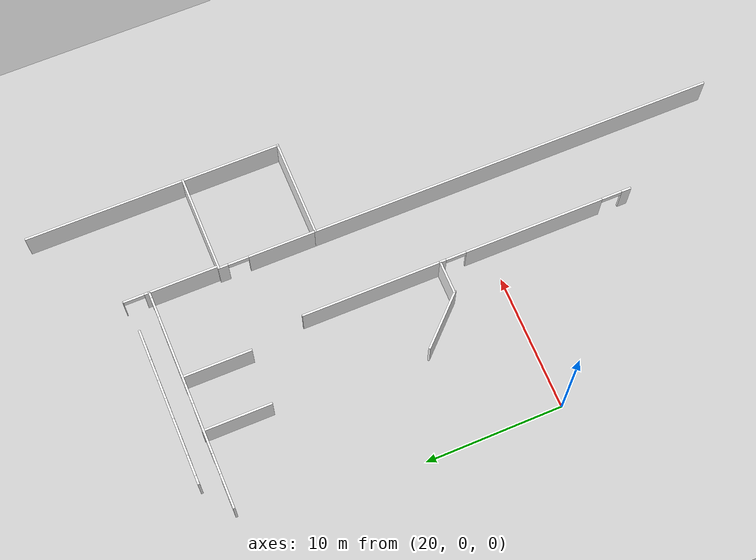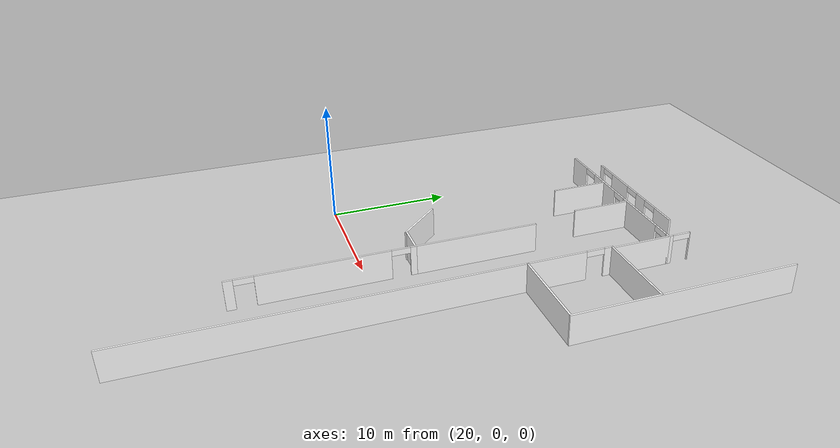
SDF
<sdf version="1.6">
 <world name="default">
  <model name="ground_plane">
   <static>1</static>
   <link name="link">
    <collision name="collision">
     <geometry><plane><normal>0 0 1</normal><size>100 100</size></plane></geometry>
     <surface><friction><ode><mu>100</mu><mu2>50</mu2></ode></friction></surface>
    </collision>
    <visual name="visual">
     <cast_shadows>0</cast_shadows>
     <geometry><plane><normal>0 0 1</normal><size>100 100</size></plane></geometry>
     <material>
      <script>
       <uri>model://office_env/materials/scripts</uri>
       <uri>model://office_env/materials/textures</uri>
       <name>wall</name>
      </script>
     </material>
    </visual>
   </link>
  </model>
  <model name="aule_N">
   <pose>0.1887 -1.4289 0 0 -0 0</pose>
   <link name="Wall_102">
    <collision name="Wall_102_Collision">
     <geometry><box><size>10.25 0.15 2.5</size></box></geometry>
     <pose>0 0 1.25 0 -0 0</pose>
    </collision>
    <visual name="Wall_102_Visual">
     <pose>0 0 1.25 0 -0 0</pose>
     <geometry><box><size>10.25 0.15 2.5</size></box></geometry>
     <material>
      <script>
       <uri>model://office_env/materials/scripts</uri>
       <uri>model://office_env/materials/textures</uri>
       <name>wall</name>
      </script>
      <ambient>1 1 1 1</ambient>
     </material>
    </visual>
    <pose>31.8169 10.3497 0 0 -0 1.5708</pose>
   </link>
   <link name="Wall_151">
    <pose>37.2203 15.8955 0 0 -0 1.5708</pose>
    <visual name="Wall_151_Visual_0">
     <pose>-1.12447 0 1.25 0 -0 0</pose>
     <geometry><box><size>5.00105 0.15 2.5</size></box></geometry>
     <material>
      <script>
       <uri>model://office_env/materials/scripts</uri>
       <uri>model://office_env/materials/textures</uri>
       <name>wall</name>
      </script>
      <ambient>1 1 1 1</ambient>
     </material>
    </visual>
    <collision name="Wall_151_Collision_0">
     <geometry><box><size>5.00105 0.15 2.5</size></box></geometry>
     <pose>-1.12447 0 1.25 0 -0 0</pose>
    </collision>
    <visual name="Wall_151_Visual_1">
     <pose>3.25053 0 1.25 0 -0 0</pose>
     <geometry><box><size>0.748949 0.15 2.5</size></box></geometry>
     <material>
      <script>
       <uri>model://office_env/materials/scripts</uri>
       <uri>model://office_env/materials/textures</uri>
       <name>wall</name>
      </script>
      <ambient>1 1 1 1</ambient>
     </material>
    </visual>
    <collision name="Wall_151_Collision_1">
     <geometry><box><size>0.748949 0.15 2.5</size></box></geometry>
     <pose>3.25053 0 1.25 0 -0 0</pose>
    </collision>
    <visual name="Wall_151_Visual_2">
     <pose>2.12605 0 2.25 0 -0 0</pose>
     <geometry><box><size>1.5 0.15 0.5</size></box></geometry>
     <material>
      <script>
       <uri>model://office_env/materials/scripts</uri>
       <uri>model://office_env/materials/textures</uri>
       <name>wall</name>
      </script>
      <ambient>1 1 1 1</ambient>
     </material>
    </visual>
    <collision name="Wall_151_Collision_2">
     <geometry><box><size>1.5 0.15 0.5</size></box></geometry>
     <pose>2.12605 0 2.25 0 -0 0</pose>
    </collision>
   </link>
   <link name="Wall_152">
    <collision name="Wall_152_Collision">
     <geometry><box><size>7.25 0.15 2.5</size></box></geometry>
     <pose>0 0 1.25 0 -0 0</pose>
    </collision>
    <visual name="Wall_152_Visual">
     <pose>0 0 1.25 0 -0 0</pose>
     <geometry><box><size>7.25 0.15 2.5</size></box></geometry>
     <material>
      <script>
       <uri>model://office_env/materials/scripts</uri>
       <uri>model://office_env/materials/textures</uri>
       <name>wall</name>
      </script>
      <ambient>1 1 1 1</ambient>
     </material>
    </visual>
    <pose>40.7703 19.4455 0 0 -0 0</pose>
   </link>
   <link name="Wall_154">
    <pose>29.3256 24.4418 0 0 -0 0</pose>
    <visual name="Wall_154_Visual_0">
     <pose>-6.88088 0 1.25 0 -0 0</pose>
     <geometry><box><size>2.48824 0.15 2.5</size></box></geometry>
     <material>
      <script>
       <uri>model://office_env/materials/scripts</uri>
       <uri>model://office_env/materials/textures</uri>
       <name>wall</name>
      </script>
      <ambient>1 1 1 1</ambient>
     </material>
    </visual>
    <collision name="Wall_154_Collision_0">
     <geometry><box><size>2.48824 0.15 2.5</size></box></geometry>
     <pose>-6.88088 0 1.25 0 -0 0</pose>
    </collision>
    <visual name="Wall_154_Visual_1">
     <pose>-2.30449 0 1.25 0 -0 0</pose>
     <geometry><box><size>3.66454 0.15 2.5</size></box></geometry>
     <material>
      <script>
       <uri>model://office_env/materials/scripts</uri>
       <uri>model://office_env/materials/textures</uri>
       <name>wall</name>
      </script>
      <ambient>1 1 1 1</ambient>
     </material>
    </visual>
    <collision name="Wall_154_Collision_1">
     <geometry><box><size>3.66454 0.15 2.5</size></box></geometry>
     <pose>-2.30449 0 1.25 0 -0 0</pose>
    </collision>
    <visual name="Wall_154_Visual_2">
     <pose>3.58098 0 1.25 0 -0 0</pose>
     <geometry><box><size>5.10639 0.15 2.5</size></box></geometry>
     <material>
      <script>
       <uri>model://office_env/materials/scripts</uri>
       <uri>model://office_env/materials/textures</uri>
       <name>wall</name>
      </script>
      <ambient>1 1 1 1</ambient>
     </material>
    </visual>
    <collision name="Wall_154_Collision_2">
     <geometry><box><size>5.10639 0.15 2.5</size></box></geometry>
     <pose>3.58098 0 1.25 0 -0 0</pose>
    </collision>
    <visual name="Wall_154_Visual_3">
     <pose>7.87959 0 1.25 0 -0 0</pose>
     <geometry><box><size>0.490824 0.15 2.5</size></box></geometry>
     <material>
      <script>
       <uri>model://office_env/materials/scripts</uri>
       <uri>model://office_env/materials/textures</uri>
       <name>wall</name>
      </script>
      <ambient>1 1 1 1</ambient>
     </material>
    </visual>
    <collision name="Wall_154_Collision_3">
     <geometry><box><size>0.490824 0.15 2.5</size></box></geometry>
     <pose>7.87959 0 1.25 0 -0 0</pose>
    </collision>
    <visual name="Wall_154_Visual_4">
     <pose>-4.88676 0 2.25 0 -0 0</pose>
     <geometry><box><size>1.5 0.15 0.5</size></box></geometry>
     <material>
      <script>
       <uri>model://office_env/materials/scripts</uri>
       <uri>model://office_env/materials/textures</uri>
       <name>wall</name>
      </script>
      <ambient>1 1 1 1</ambient>
     </material>
    </visual>
    <collision name="Wall_154_Collision_4">
     <geometry><box><size>1.5 0.15 0.5</size></box></geometry>
     <pose>-4.88676 0 2.25 0 -0 0</pose>
    </collision>
    <visual name="Wall_154_Visual_5">
     <pose>0.277782 0 2.25 0 -0 0</pose>
     <geometry><box><size>1.5 0.15 0.5</size></box></geometry>
     <material>
      <script>
       <uri>model://office_env/materials/scripts</uri>
       <uri>model://office_env/materials/textures</uri>
       <name>wall</name>
      </script>
      <ambient>1 1 1 1</ambient>
     </material>
    </visual>
    <collision name="Wall_154_Collision_5">
     <geometry><box><size>1.5 0.15 0.5</size></box></geometry>
     <pose>0.277782 0 2.25 0 -0 0</pose>
    </collision>
    <visual name="Wall_154_Visual_6">
     <pose>6.88418 0 2.25 0 -0 0</pose>
     <geometry><box><size>1.5 0.15 0.5</size></box></geometry>
     <material>
      <script>
       <uri>model://office_env/materials/scripts</uri>
       <uri>model://office_env/materials/textures</uri>
       <name>wall</name>
      </script>
      <ambient>1 1 1 1</ambient>
     </material>
    </visual>
    <collision name="Wall_154_Collision_6">
     <geometry><box><size>1.5 0.15 0.5</size></box></geometry>
     <pose>6.88418 0 2.25 0 -0 0</pose>
    </collision>
   </link>
   <link name="Wall_155">
    <collision name="Wall_155_Collision">
     <geometry><box><size>5 0.15 2.5</size></box></geometry>
     <pose>0 0 1.25 0 -0 0</pose>
    </collision>
    <visual name="Wall_155_Visual">
     <pose>0 0 1.25 0 -0 0</pose>
     <geometry><box><size>5 0.15 2.5</size></box></geometry>
     <material>
      <script>
       <uri>model://office_env/materials/scripts</uri>
       <uri>model://office_env/materials/textures</uri>
       <name>wall</name>
      </script>
      <ambient>1 1 1 1</ambient>
     </material>
    </visual>
    <pose>37.3756 22.0168 0 0 0 -1.5708</pose>
   </link>
   <link name="Wall_157">
    <collision name="Wall_157_Collision">
     <geometry><box><size>5 0.15 2.5</size></box></geometry>
     <pose>0 0 1.25 0 -0 0</pose>
    </collision>
    <visual name="Wall_157_Visual">
     <pose>0 0 1.25 0 -0 0</pose>
     <geometry><box><size>5 0.15 2.5</size></box></geometry>
     <material>
      <script>
       <uri>model://office_env/materials/scripts</uri>
       <uri>model://office_env/materials/textures</uri>
       <name>wall</name>
      </script>
      <ambient>1 1 1 1</ambient>
     </material>
    </visual>
    <pose>26.8585 22.0634 0 0 0 -1.5708</pose>
   </link>
   <link name="Wall_159">
    <collision name="Wall_159_Collision">
     <geometry><box><size>5 0.15 2.5</size></box></geometry>
     <pose>0 0 1.25 0 -0 0</pose>
    </collision>
    <visual name="Wall_159_Visual">
     <pose>0 0 1.25 0 -0 0</pose>
     <geometry><box><size>5 0.15 2.5</size></box></geometry>
     <material>
      <script>
       <uri>model://office_env/materials/scripts</uri>
       <uri>model://office_env/materials/textures</uri>
       <name>wall</name>
      </script>
      <ambient>1 1 1 1</ambient>
     </material>
    </visual>
    <pose>30.8596 21.9703 0 0 0 -1.5708</pose>
   </link>
   <link name="Wall_161">
    <pose>37.3756 25.3668 0 0 -0 1.5708</pose>
    <visual name="Wall_161_Visual_0">
     <pose>-0.779213 0 1.25 0 -0 0</pose>
     <geometry><box><size>0.441574 0.15 2.5</size></box></geometry>
     <material>
      <script>
       <uri>model://office_env/materials/scripts</uri>
       <uri>model://office_env/materials/textures</uri>
       <name>wall</name>
      </script>
      <ambient>1 1 1 1</ambient>
     </material>
    </visual>
    <collision name="Wall_161_Collision_0">
     <geometry><box><size>0.441574 0.15 2.5</size></box></geometry>
     <pose>-0.779213 0 1.25 0 -0 0</pose>
    </collision>
    <visual name="Wall_161_Visual_1">
     <pose>0.970787 0 1.25 0 -0 0</pose>
     <geometry><box><size>0.058426 0.15 2.5</size></box></geometry>
     <material>
      <script>
       <uri>model://office_env/materials/scripts</uri>
       <uri>model://office_env/materials/textures</uri>
       <name>wall</name>
      </script>
      <ambient>1 1 1 1</ambient>
     </material>
    </visual>
    <collision name="Wall_161_Collision_1">
     <geometry><box><size>0.058426 0.15 2.5</size></box></geometry>
     <pose>0.970787 0 1.25 0 -0 0</pose>
    </collision>
    <visual name="Wall_161_Visual_2">
     <pose>0.191574 0 2.25 0 -0 0</pose>
     <geometry><box><size>1.5 0.15 0.5</size></box></geometry>
     <material>
      <script>
       <uri>model://office_env/materials/scripts</uri>
       <uri>model://office_env/materials/textures</uri>
       <name>wall</name>
      </script>
      <ambient>1 1 1 1</ambient>
     </material>
    </visual>
    <collision name="Wall_161_Collision_2">
     <geometry><box><size>1.5 0.15 0.5</size></box></geometry>
     <pose>0.191574 0 2.25 0 -0 0</pose>
    </collision>
   </link>
   <link name="Wall_173">
    <pose>29.3234 25.9953 0 0 -0 0</pose>
    <visual name="Wall_173_Visual_0">
     <pose>-5.43624 0 1.25 0 -0 0</pose>
     <geometry><box><size>0.627523 0.15 2.5</size></box></geometry>
     <material>
      <script>
       <uri>model://office_env/materials/scripts</uri>
       <uri>model://office_env/materials/textures</uri>
       <name>wall</name>
      </script>
      <ambient>1 1 1 1</ambient>
     </material>
    </visual>
    <collision name="Wall_173_Collision_0">
     <geometry><box><size>0.627523 0.15 2.5</size></box></geometry>
     <pose>-5.43624 0 1.25 0 -0 0</pose>
    </collision>
    <visual name="Wall_173_Visual_1">
     <pose>-2.27883 0 1.25 0 -0 0</pose>
     <geometry><box><size>2.6873 0.15 2.5</size></box></geometry>
     <material>
      <script>
       <uri>model://office_env/materials/scripts</uri>
       <uri>model://office_env/materials/textures</uri>
       <name>wall</name>
      </script>
      <ambient>1 1 1 1</ambient>
     </material>
    </visual>
    <collision name="Wall_173_Collision_1">
     <geometry><box><size>2.6873 0.15 2.5</size></box></geometry>
     <pose>-2.27883 0 1.25 0 -0 0</pose>
    </collision>
    <visual name="Wall_173_Visual_2">
     <pose>1.25706 0 1.25 0 -0 0</pose>
     <geometry><box><size>1.38448 0.15 2.5</size></box></geometry>
     <material>
      <script>
       <uri>model://office_env/materials/scripts</uri>
       <uri>model://office_env/materials/textures</uri>
       <name>wall</name>
      </script>
      <ambient>1 1 1 1</ambient>
     </material>
    </visual>
    <collision name="Wall_173_Collision_2">
     <geometry><box><size>1.38448 0.15 2.5</size></box></geometry>
     <pose>1.25706 0 1.25 0 -0 0</pose>
    </collision>
    <visual name="Wall_173_Visual_3">
     <pose>4.59965 0 1.25 0 -0 0</pose>
     <geometry><box><size>2.3007 0.15 2.5</size></box></geometry>
     <material>
      <script>
       <uri>model://office_env/materials/scripts</uri>
       <uri>model://office_env/materials/textures</uri>
       <name>wall</name>
      </script>
      <ambient>1 1 1 1</ambient>
     </material>
    </visual>
    <collision name="Wall_173_Collision_3">
     <geometry><box><size>2.3007 0.15 2.5</size></box></geometry>
     <pose>4.59965 0 1.25 0 -0 0</pose>
    </collision>
    <visual name="Wall_173_Visual_4">
     <pose>-4.37248 0 2.25 0 -0 0</pose>
     <geometry><box><size>1.5 0.15 0.5</size></box></geometry>
     <material>
      <script>
       <uri>model://office_env/materials/scripts</uri>
       <uri>model://office_env/materials/textures</uri>
       <name>wall</name>
      </script>
      <ambient>1 1 1 1</ambient>
     </material>
    </visual>
    <collision name="Wall_173_Collision_4">
     <geometry><box><size>1.5 0.15 0.5</size></box></geometry>
     <pose>-4.37248 0 2.25 0 -0 0</pose>
    </collision>
    <visual name="Wall_173_Visual_5">
     <pose>-0.185179 0 2.25 0 -0 0</pose>
     <geometry><box><size>1.5 0.15 0.5</size></box></geometry>
     <material>
      <script>
       <uri>model://office_env/materials/scripts</uri>
       <uri>model://office_env/materials/textures</uri>
       <name>wall</name>
      </script>
      <ambient>1 1 1 1</ambient>
     </material>
    </visual>
    <collision name="Wall_173_Collision_5">
     <geometry><box><size>1.5 0.15 0.5</size></box></geometry>
     <pose>-0.185179 0 2.25 0 -0 0</pose>
    </collision>
    <visual name="Wall_173_Visual_6">
     <pose>2.6993 0 2.25 0 -0 0</pose>
     <geometry><box><size>1.5 0.15 0.5</size></box></geometry>
     <material>
      <script>
       <uri>model://office_env/materials/scripts</uri>
       <uri>model://office_env/materials/textures</uri>
       <name>wall</name>
      </script>
      <ambient>1 1 1 1</ambient>
     </material>
    </visual>
    <collision name="Wall_173_Collision_6">
     <geometry><box><size>1.5 0.15 0.5</size></box></geometry>
     <pose>2.6993 0 2.25 0 -0 0</pose>
    </collision>
   </link>
   <link name="Wall_37">
    <collision name="Wall_37_Collision">
     <geometry><box><size>30 0.15 2.5</size></box></geometry>
     <pose>0 0 1.25 0 -0 0</pose>
    </collision>
    <visual name="Wall_37_Visual">
     <pose>0 0 1.25 0 -0 0</pose>
     <geometry><box><size>30 0.15 2.5</size></box></geometry>
     <material>
      <script>
       <uri>model://office_env/materials/scripts</uri>
       <uri>model://office_env/materials/textures</uri>
       <name>wall</name>
      </script>
      <ambient>1 1 1 1</ambient>
     </material>
    </visual>
    <pose>37.2203 -2.57952 0 0 -0 1.5708</pose>
   </link>
   <link name="Wall_38">
    <collision name="Wall_38_Collision">
     <geometry><box><size>7.25 0.15 2.5</size></box></geometry>
     <pose>0 0 1.25 0 -0 0</pose>
    </collision>
    <visual name="Wall_38_Visual">
     <pose>0 0 1.25 0 -0 0</pose>
     <geometry><box><size>7.25 0.15 2.5</size></box></geometry>
     <material>
      <script>
       <uri>model://office_env/materials/scripts</uri>
       <uri>model://office_env/materials/textures</uri>
       <name>wall</name>
      </script>
      <ambient>1 1 1 1</ambient>
     </material>
    </visual>
    <pose>40.7703 12.3455 0 0 -0 0</pose>
   </link>
   <link name="Wall_41">
    <collision name="Wall_41_Collision">
     <geometry><box><size>18.75 0.15 2.5</size></box></geometry>
     <pose>0 0 1.25 0 -0 0</pose>
    </collision>
    <visual name="Wall_41_Visual">
     <pose>0 0 1.25 0 -0 0</pose>
     <geometry><box><size>18.75 0.15 2.5</size></box></geometry>
     <material>
      <script>
       <uri>model://office_env/materials/scripts</uri>
       <uri>model://office_env/materials/textures</uri>
       <name>wall</name>
      </script>
      <ambient>1 1 1 1</ambient>
     </material>
    </visual>
    <pose>44.3203 21.6455 0 0 -0 1.5708</pose>
   </link>
   <link name="Wall_71">
    <collision name="Wall_71_Collision">
     <geometry><box><size>4.57401 0.15 2.5</size></box></geometry>
     <pose>0 0 1.25 0 -0 0</pose>
    </collision>
    <visual name="Wall_71_Visual">
     <pose>0 0 1.25 0 -0 0</pose>
     <geometry><box><size>4.57401 0.15 2.5</size></box></geometry>
     <material>
      <script>
       <uri>model://office_env/materials/scripts</uri>
       <uri>model://office_env/materials/textures</uri>
       <name>wall</name>
      </script>
      <ambient>1 1 1 1</ambient>
     </material>
    </visual>
    <pose>27.9294 6.81961 0 0 0 -0.802267</pose>
   </link>
   <link name="Wall_72">
    <collision name="Wall_72_Collision">
     <geometry><box><size>2.5 0.15 2.5</size></box></geometry>
     <pose>0 0 1.25 0 -0 0</pose>
    </collision>
    <visual name="Wall_72_Visual">
     <pose>0 0 1.25 0 -0 0</pose>
     <geometry><box><size>2.5 0.15 2.5</size></box></geometry>
     <material>
      <script>
       <uri>model://office_env/materials/scripts</uri>
       <uri>model://office_env/materials/textures</uri>
       <name>wall</name>
      </script>
      <ambient>1 1 1 1</ambient>
     </material>
    </visual>
    <pose>30.6419 5.29968 0 0 -0 0</pose>
   </link>
   <link name="Wall_87">
    <pose>31.8169 -1.89331 0 0 0 -1.5708</pose>
    <visual name="Wall_87_Visual_0">
     <pose>-7.01644 0 1.25 0 -0 0</pose>
     <geometry><box><size>0.503106 0.15 2.5</size></box></geometry>
     <material>
      <script>
       <uri>model://office_env/materials/scripts</uri>
       <uri>model://office_env/materials/textures</uri>
       <name>wall</name>
      </script>
      <ambient>1 1 1 1</ambient>
     </material>
    </visual>
    <collision name="Wall_87_Collision_0">
     <geometry><box><size>0.503106 0.15 2.5</size></box></geometry>
     <pose>-7.01644 0 1.25 0 -0 0</pose>
    </collision>
    <visual name="Wall_87_Visual_1">
     <pose>-0.110444 0 1.25 0 -0 0</pose>
     <geometry><box><size>10.3089 0.15 2.5</size></box></geometry>
     <material>
      <script>
       <uri>model://office_env/materials/scripts</uri>
       <uri>model://office_env/materials/textures</uri>
       <name>wall</name>
      </script>
      <ambient>1 1 1 1</ambient>
     </material>
    </visual>
    <collision name="Wall_87_Collision_1">
     <geometry><box><size>10.3089 0.15 2.5</size></box></geometry>
     <pose>-0.110444 0 1.25 0 -0 0</pose>
    </collision>
    <visual name="Wall_87_Visual_2">
     <pose>6.906 0 1.25 0 -0 0</pose>
     <geometry><box><size>0.723995 0.15 2.5</size></box></geometry>
     <material>
      <script>
       <uri>model://office_env/materials/scripts</uri>
       <uri>model://office_env/materials/textures</uri>
       <name>wall</name>
      </script>
      <ambient>1 1 1 1</ambient>
     </material>
    </visual>
    <collision name="Wall_87_Collision_2">
     <geometry><box><size>0.723995 0.15 2.5</size></box></geometry>
     <pose>6.906 0 1.25 0 -0 0</pose>
    </collision>
    <visual name="Wall_87_Visual_3">
     <pose>-6.01489 0 2.25 0 -0 0</pose>
     <geometry><box><size>1.5 0.15 0.5</size></box></geometry>
     <material>
      <script>
       <uri>model://office_env/materials/scripts</uri>
       <uri>model://office_env/materials/textures</uri>
       <name>wall</name>
      </script>
      <ambient>1 1 1 1</ambient>
     </material>
    </visual>
    <collision name="Wall_87_Collision_3">
     <geometry><box><size>1.5 0.15 0.5</size></box></geometry>
     <pose>-6.01489 0 2.25 0 -0 0</pose>
    </collision>
    <visual name="Wall_87_Visual_4">
     <pose>5.794 0 2.25 0 -0 0</pose>
     <geometry><box><size>1.5 0.15 0.5</size></box></geometry>
     <material>
      <script>
       <uri>model://office_env/materials/scripts</uri>
       <uri>model://office_env/materials/textures</uri>
       <name>wall</name>
      </script>
      <ambient>1 1 1 1</ambient>
     </material>
    </visual>
    <collision name="Wall_87_Collision_4">
     <geometry><box><size>1.5 0.15 0.5</size></box></geometry>
     <pose>5.794 0 2.25 0 -0 0</pose>
    </collision>
   </link>
   <static>1</static>
  </model>
 </world>
</sdf>
